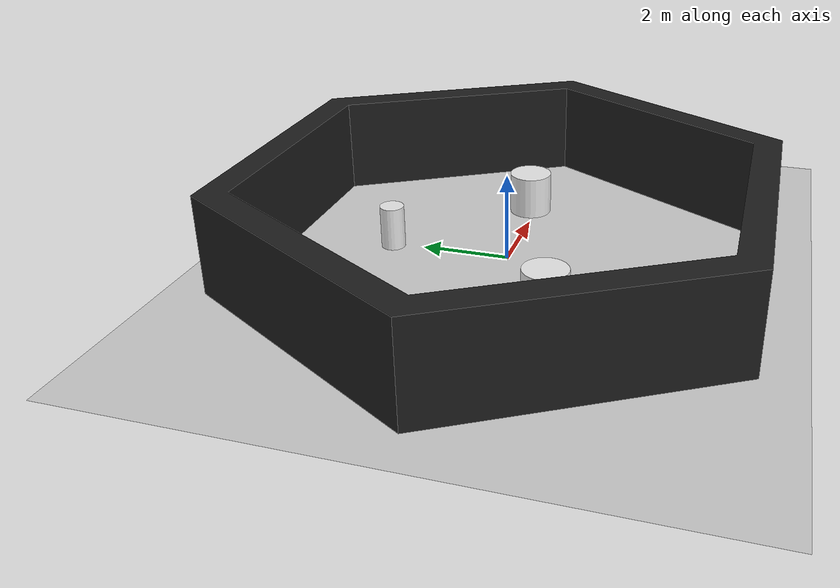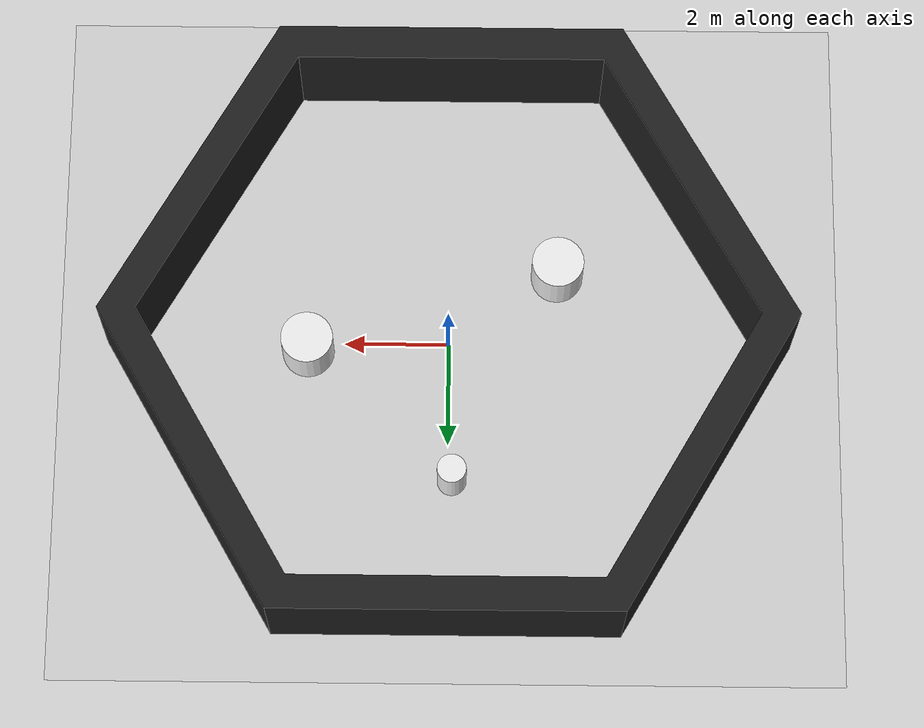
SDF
<sdf version="1.7">
 <world name="default">
  <light name="sun" type="directional">
   <pose>0 0 10 0 -0 0</pose>
   <diffuse>0.8 0.8 0.8 1</diffuse>
   <specular>0.2 0.2 0.2 1</specular>
   <attenuation>
    <range>1000</range>
    <constant>0.9</constant>
    <linear>0.01</linear>
    <quadratic>0.001</quadratic>
   </attenuation>
   <direction>-0.5 0.1 -0.9</direction>
   <spot><inner_angle>0</inner_angle><outer_angle>0</outer_angle><falloff>0</falloff></spot>
  </light>
  <model name="ground_plane">
   <static>1</static>
   <link name="link">
    <collision name="collision">
     <geometry><plane><normal>0 0 1</normal><size>100 100</size></plane></geometry>
     <surface>
      <contact><collide_bitmask>65535</collide_bitmask></contact>
      <friction><ode><mu>100</mu><mu2>50</mu2></ode></friction>
     </surface>
    </collision>
    <visual name="visual">
     <cast_shadows>0</cast_shadows>
     <geometry><plane><normal>0 0 1</normal><size>100 100</size></plane></geometry>
     <material>
      <script><uri>file://media/materials/scripts/gazebo.material</uri><name>Gazebo/Grey</name></script>
     </material>
    </visual>
   </link>
  </model>
  <physics type="ode">
   <real_time_update_rate>1000</real_time_update_rate>
   <max_step_size>0.001</max_step_size>
   <real_time_factor>1</real_time_factor>
   <ode>
    <solver>
     <type>quick</type>
     <iters>150</iters>
     <precon_iters>0</precon_iters>
     <sor>1.4</sor>
     <use_dynamic_moi_rescaling>1</use_dynamic_moi_rescaling>
    </solver>
    <constraints>
     <cfm>1e-05</cfm>
     <erp>0.2</erp>
     <contact_max_correcting_vel>2000</contact_max_correcting_vel>
     <contact_surface_layer>0.01</contact_surface_layer>
    </constraints>
   </ode>
  </physics>
  <model name="ros_symbol">
   <static>1</static>
   <link name="symbol">
    <collision name="body">
     <pose>0 0 -0.3 0 0 -1.5708</pose>
     <geometry>
      <mesh><uri>model://turtlebot3_world/meshes/wall.dae</uri><scale>0.5 0.5 0.5</scale></mesh>
     </geometry>
    </collision>
    <visual name="body_visual">
     <pose>0 0 -0.3 0 0 -1.5708</pose>
     <geometry>
      <mesh><uri>model://turtlebot3_world/meshes/wall.dae</uri><scale>0.5 0.5 0.5</scale></mesh>
     </geometry>
     <material>
      <script><uri>file://media/materials/scripts/gazebo.material</uri><name>Gazebo/FlatBlack</name></script>
     </material>
    </visual>
   </link>
  </model>
  <scene><ambient>0.4 0.4 0.4 1</ambient><background>0.7 0.7 0.7 1</background><shadows>1</shadows></scene>
  <gravity>0 0 -9.8</gravity>
  <magnetic_field>6e-06 2.3e-05 -4.2e-05</magnetic_field>
  <atmosphere type="adiabatic"/>
  <spherical_coordinates>
   <surface_model>EARTH_WGS84</surface_model>
   <latitude_deg>0</latitude_deg>
   <longitude_deg>0</longitude_deg>
   <elevation>0</elevation>
   <heading_deg>0</heading_deg>
  </spherical_coordinates>
  <model name="unit_cylinder">
   <static>1</static>
   <pose>-2.08941 -1.39977 0.499993 4e-06 4e-06 -0</pose>
   <link name="link">
    <inertial>
     <mass>1</mass>
     <inertia><ixx>0.145833</ixx><ixy>0</ixy><ixz>0</ixz><iyy>0.145833</iyy><iyz>0</iyz><izz>0.125</izz></inertia>
    </inertial>
    <collision name="collision">
     <geometry><cylinder><radius>0.500002</radius><length>1</length></cylinder></geometry>
    </collision>
    <visual name="visual">
     <geometry><cylinder><radius>0.500002</radius><length>1</length></cylinder></geometry>
     <material>
      <script><name>Gazebo/White</name><uri>file://media/materials/scripts/gazebo.material</uri></script>
     </material>
    </visual>
   </link>
  </model>
  <model name="unit_cylinder_clone_0">
   <static>1</static>
   <pose>-0.083666 2.72428 0.5 0 -0 0</pose>
   <link name="link">
    <inertial>
     <mass>1</mass>
     <inertia><ixx>0.145833</ixx><ixy>0</ixy><ixz>0</ixz><iyy>0.145833</iyy><iyz>0</iyz><izz>0.125</izz></inertia>
    </inertial>
    <collision name="collision">
     <geometry><cylinder><radius>0.278673</radius><length>1</length></cylinder></geometry>
    </collision>
    <visual name="visual">
     <geometry><cylinder><radius>0.278673</radius><length>1</length></cylinder></geometry>
     <material>
      <script><name>Gazebo/White</name><uri>file://media/materials/scripts/gazebo.material</uri></script>
     </material>
    </visual>
   </link>
  </model>
  <model name="unit_cylinder_clone_0_clone">
   <static>1</static>
   <pose>2.70945 0.163704 0.5 0 -0 0</pose>
   <link name="link">
    <inertial>
     <mass>1</mass>
     <inertia><ixx>0.145833</ixx><ixy>0</ixy><ixz>0</ixz><iyy>0.145833</iyy><iyz>0</iyz><izz>0.125</izz></inertia>
    </inertial>
    <collision name="collision">
     <geometry><cylinder><radius>0.500001</radius><length>1</length></cylinder></geometry>
    </collision>
    <visual name="visual">
     <geometry><cylinder><radius>0.500001</radius><length>1</length></cylinder></geometry>
     <material>
      <script><name>Gazebo/White</name><uri>file://media/materials/scripts/gazebo.material</uri></script>
     </material>
    </visual>
   </link>
  </model>
 </world>
</sdf>
